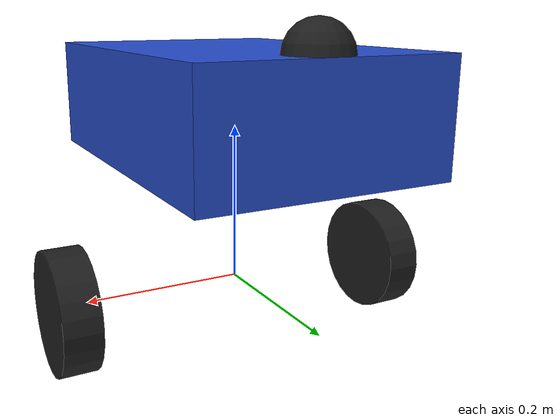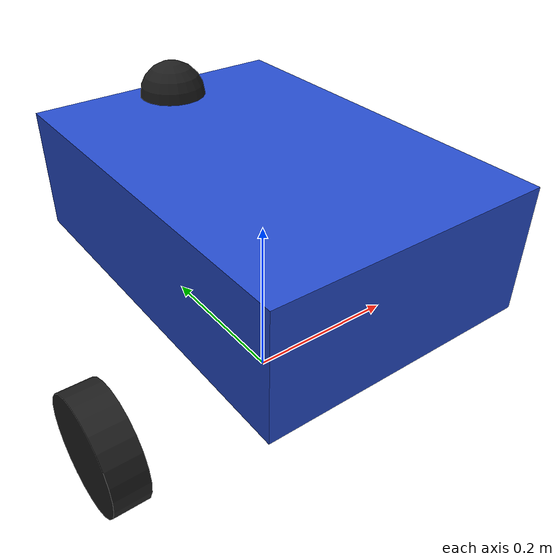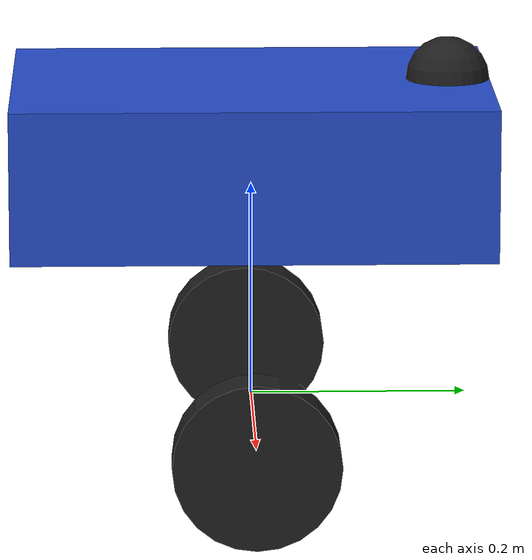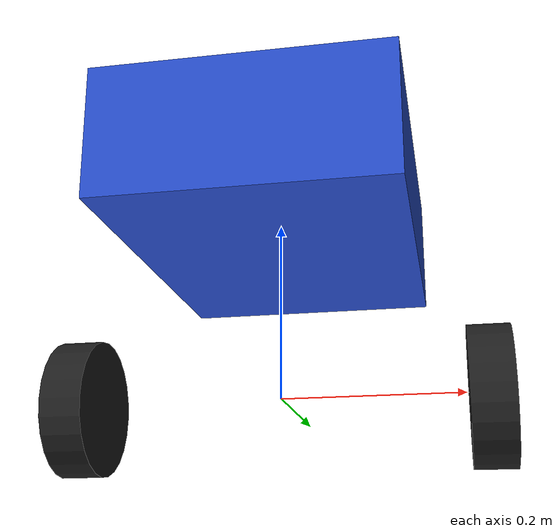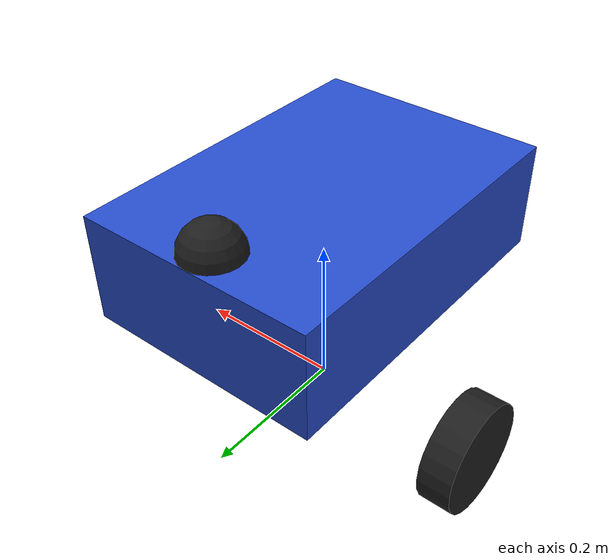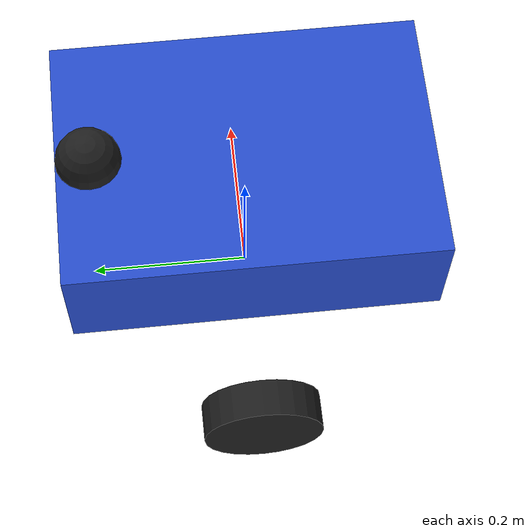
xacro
<robot name="robot" xmlns:xacro="http://www.ros.org/wiki/xacro">
    <xacro:property name="PI" value="3.14159265359" />
    <xacro:arg name="ns" default="robot" />

    <!-- Parameters -->
    <xacro:property name="chassis_length" value="0.1" />
    <xacro:property name="chassis_width" value="0.45" />
    <xacro:property name="chassis_height" value="0.01" />

    <xacro:property name="wheel_diameter" value="0.152" />
    <xacro:property name="wheel_radius" value="${wheel_diameter / 2}" />
    <xacro:property name="wheel_width" value="0.046" />

    <xacro:property name="caster_radius" value="0.03" />

    <xacro:property name="min_lift_height" value="0.012" />
    <xacro:property name="max_lift_height" value="0.305" />

    <xacro:property name="body_top_length" value="0.440" />
    <xacro:property name="body_top_width" value="0.309" />
    <xacro:property name="body_top_height" value="0.140" />

    <!-- Base Link -->
    <link name="base_link">
        <inertial>
            <mass value="5" />
            <origin xyz="0 0 0" />
            <inertia ixx="0.01" ixy="0.0" ixz="0.0" iyy="0.01" iyz="0.0" izz="0.001" />
        </inertial>
    </link>

    <!-- Four Wheels -->
    <link name="wheel_left">
        <visual>
            <geometry>
                <cylinder radius="${wheel_radius}" length="${wheel_width}" />
            </geometry>
            <material name="black" />
        </visual>
        <collision>
            <geometry>
                <cylinder radius="${wheel_radius}" length="${wheel_width}" />
            </geometry>
        </collision>
        <inertial>
            <mass value="0.01" />
            <origin xyz="0 0 0" />
            <inertia ixx="0.01" ixy="0.0" ixz="0.0" iyy="0.01" iyz="0.0" izz="0.01" />
        </inertial>
    </link>

    <link name="wheel_right">
        <visual>
            <geometry>
                <cylinder radius="${wheel_radius}" length="${wheel_width}" />
            </geometry>
            <material name="black" />
        </visual>
        <collision>
            <geometry>
                <cylinder radius="${wheel_radius}" length="${wheel_width}" />
            </geometry>
        </collision>
        <inertial>
            <mass value="0.01" />
            <origin xyz="0 0 0" />
            <inertia ixx="0.01" ixy="0.0" ixz="0.0" iyy="0.01" iyz="0.0" izz="0.01" />
        </inertial>
    </link>

    <!-- Joints for Wheels -->
    <joint name="joint_wheel_l" type="continuous">
        <parent link="base_link" />
        <child link="wheel_left" />
        <origin xyz="${-chassis_width/2} 0 -${chassis_height/2}"
            rpy="0 ${-PI/2} 0" />
        <axis xyz="0 0 1" />
    </joint>

    <joint name="joint_wheel_r" type="continuous">
        <parent link="base_link" />
        <child link="wheel_right" />
        <origin xyz="${chassis_width/2} 0 -${chassis_height/2}"
            rpy="0 ${-PI/2} 0" />
        <axis xyz="0 0 1" />
    </joint>

    <link name="caster_forward">
        <collision>
            <origin rpy="0 0 0" xyz="0 0 0" />
            <geometry>
                <sphere radius="${caster_radius}" />
            </geometry>
        </collision>
    </link>

    <link name="caster_backward">
        <collision>
            <origin rpy="0 0 0" xyz="0 0 0" />
            <geometry>
                <sphere radius="${caster_radius}" />
            </geometry>
        </collision>
    </link>

    <joint name="caster_forward_joint" type="fixed">
        <origin
            xyz="0 ${body_top_length/2-caster_radius} ${-chassis_height/2-wheel_radius+caster_radius}"
            rpy="0 0 0" />
        <parent link="base_link" />
        <child link="caster_forward" />
    </joint>

    <joint name="caster_backward_joint" type="fixed">
        <origin
            xyz="0 ${-body_top_length/2+caster_radius} ${-chassis_height/2-wheel_radius+caster_radius}"
            rpy="0 0 0" />
        <parent link="base_link" />
        <child link="caster_backward" />
    </joint>

    <!-- Body Link on Top of Telescopic Rod -->
    <link name="body_top">
        <visual>
            <geometry>
                <box size="${body_top_width} ${body_top_length} ${body_top_height}" />
            </geometry>
            <material name="blue" />
        </visual>
        <collision>
            <geometry>
                <box size="${body_top_width} ${body_top_length} ${body_top_height}" />
            </geometry>
        </collision>
        <inertial>
            <mass value="0.1" />
            <origin xyz="0 0 0" />
            <inertia ixx="0.002" ixy="0.0" ixz="0.0" iyy="0.002" iyz="0.0" izz="0.002" />
        </inertial>
    </link>

    <!-- Joint for Body Top -->
    <xacro:property name="lift_origin"
        value="${body_top_height / 2}" />
    <joint name="joint_body_top" type="prismatic">
        <parent link="base_link" />
        <child link="body_top" />
        <origin
            xyz="0 0 ${lift_origin}" />
        <axis xyz="0 0 1" />
        <limit lower="${min_lift_height}" upper="${max_lift_height}"
            effort="1.0" velocity="0.1" /> <!-- 10 cm to 30 cm -->
    </joint>

    <link name="body_top_semantic">
        <visual>
            <geometry>
                <sphere radius="${body_top_width/8}" />
            </geometry>
            <material name="black" />
        </visual>
        <collision>
            <geometry>
                <sphere radius="${body_top_width/8}" />
            </geometry>
        </collision>
    </link>

    <joint name="joint_body_top_semantic" type="fixed">
        <parent link="body_top" />
        <child link="body_top_semantic" />
        <origin
            xyz="0 ${body_top_length/2-body_top_width/8} ${body_top_height/2}" />
    </joint>

    <!-- Transmission for the wheels -->
    <transmission name="trans_wheel_left">
        <type>transmission_interface/SimpleTransmission</type>
        <joint name="joint_wheel_l">
            <hardwareInterface>hardware_interface/VelocityJointInterface</hardwareInterface>
        </joint>
        <actuator name="actuator_wheel_left">
            <mechanicalReduction>1</mechanicalReduction>
        </actuator>
    </transmission>

    <transmission name="trans_wheel_right">
        <type>transmission_interface/SimpleTransmission</type>
        <joint name="joint_wheel_r">
            <hardwareInterface>hardware_interface/VelocityJointInterface</hardwareInterface>
        </joint>
        <actuator name="actuator_wheel_right">
            <mechanicalReduction>1</mechanicalReduction>
        </actuator>
    </transmission>

    <transmission name="trans_body_top">
        <type>transmission_interface/SimpleTransmission</type>
        <joint name="joint_body_top">
            <hardwareInterface>hardware_interface/PositionJointInterface</hardwareInterface>
        </joint>
        <actuator name="actuator_body_top">
            <mechanicalReduction>1</mechanicalReduction>
        </actuator>
    </transmission>

    <gazebo>
        <plugin name="gazebo_ros_control" filename="libgazebo_ros_control.so">
            <robotNamespace>/$(arg ns)</robotNamespace>
        </plugin>
    </gazebo>

    <gazebo reference="base_link">
        <material>Gazebo/Grey</material>
    </gazebo>
    <gazebo reference="wheel_left">
        <material>Gazebo/DarkGrey</material>
    </gazebo>
    <gazebo reference="wheel_right">
        <material>Gazebo/DarkGrey</material>
    </gazebo>
    <gazebo reference="telescopic_rod">
        <material>Gazebo/White</material>
    </gazebo>
    <gazebo reference="body_top">
        <material>Gazebo/DarkYellow </material>
    </gazebo>

    <gazebo reference="caster_forward">
        <mu1 value="0.0" />
        <mu2 value="0.0" />
    </gazebo>
    <gazebo reference="caster_backward">
        <mu1 value="0.0" />
        <mu2 value="0.0" />
    </gazebo>
</robot>
